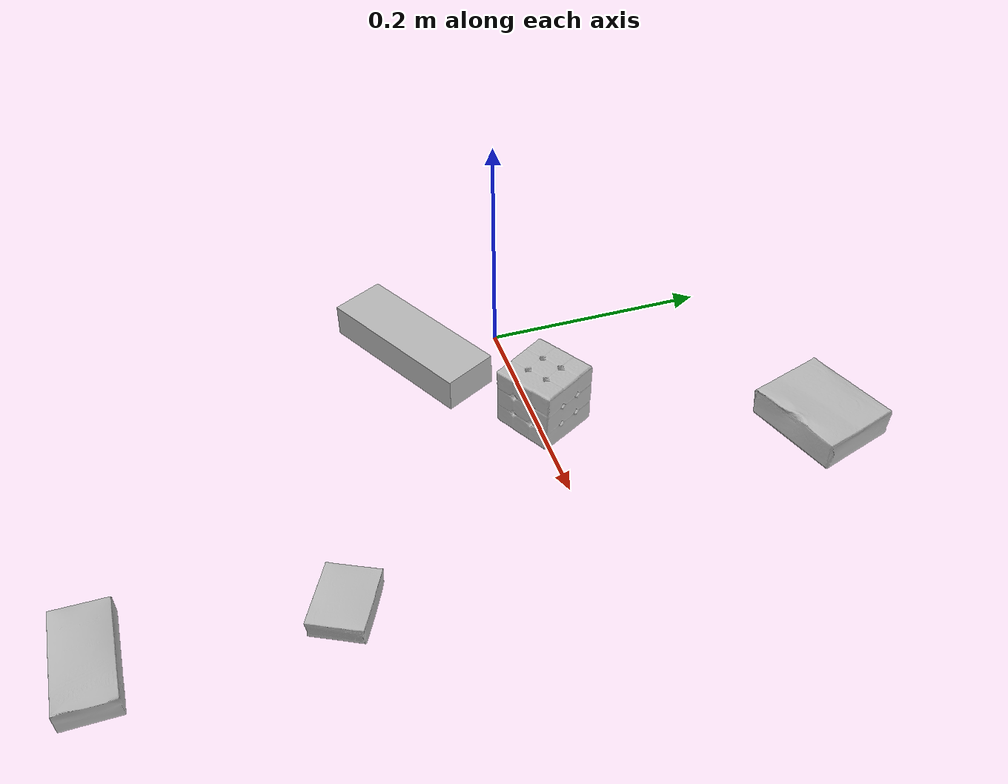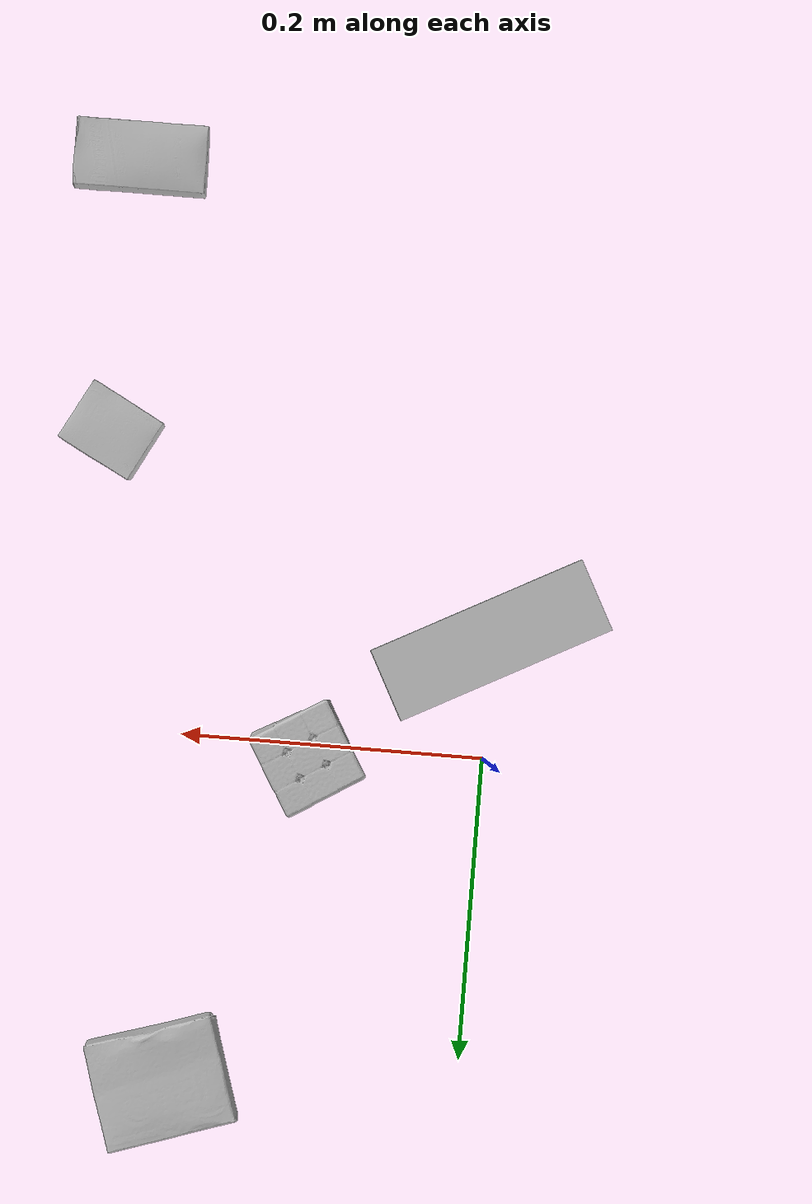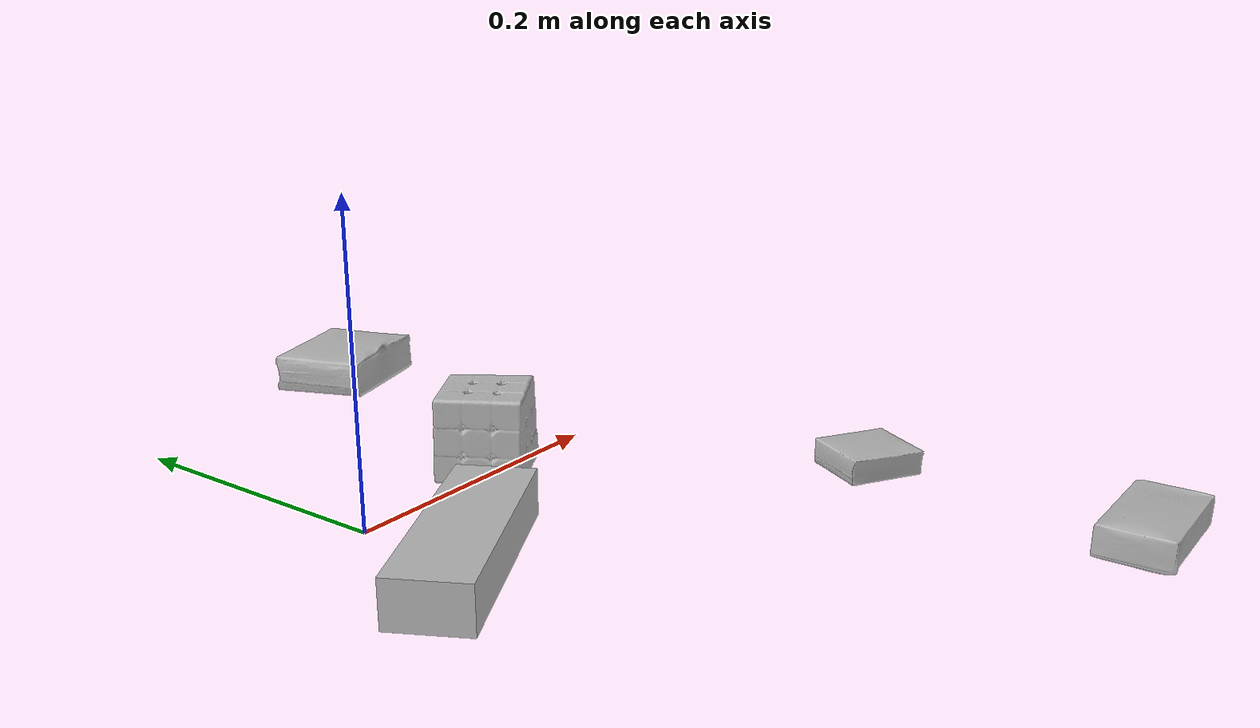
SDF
<sdf version="1.4">
  <world name="default">
    <light name="light1" type="point">
      <pose>0 0 1 0 0 0</pose>
      <diffuse>3 3 3 1</diffuse>
      <specular>3 3 3 1</specular>
    </light>
    <light name="light2" type="point">
      <pose>0 0.5 2 0 0 0</pose>
      <diffuse>1 1 1 1</diffuse>
      <specular>1 1 1 1</specular>
    </light>
    <light name="light3" type="point">
      <pose>0 0.5 2 0 0 0</pose>
      <diffuse>3 3 3 1</diffuse>
      <specular>3 3 3 1</specular>
    </light>
    <scene>
      <ambient>0.7 0.7 0.7</ambient>
    </scene>
    <model name="box1">
      <link name="link_box1">
        <collision name="default">
          <geometry>
            <mesh>
              <uri>model://sugar_box/collision_meshes/collision.obj</uri>
              <scale>0.5 0.5 0.5</scale>
            </mesh>
          </geometry>
          <surface>
            <friction>
              <ode>
                <mu>0.5</mu>
                <mu2>0.5</mu2>
              </ode>
            </friction>
          <contact>
        <ode>
            <max_vel>0</max_vel>
            <min_depth>0.0001</min_depth>
            <kp>1e8</kp>
        </ode>
    </contact></surface>
        </collision>
        <visual name="default">
          <geometry>
            <mesh>
              <uri>model://sugar_box/visual_meshes/visual.dae</uri>
              <scale>0.5 0.5 0.5</scale>
            </mesh>
          </geometry>
        </visual>
        <inertial>
          <mass>0.06211651861667633</mass>
          <pose>0.0005171863595023751 1.9245546354795806e-05 -0.00018182402709499002 -0.00040462630054681676 0.0010506634057476226 0.0026153787889456807</pose>
          <inertia>
            <ixx>1.2938825e-05</ixx>
            <iyy>4.1820942e-05</iyy>
            <izz>5.0064667e-05</izz>
            <ixy>0</ixy>
            <ixz>0</ixz>
            <iyz>0</iyz>
          </inertia>
        </inertial>
      </link>
      <pose>0.2561412453651428 -0.3767564296722412 0.01139930821955204 0.0007746524646329672 -0.02343308582462513 3.1362673338523037</pose>
    </model>
    <model name="box2">
      <link name="link_box2">
        <collision name="default">
          <geometry>
            <mesh>
              <uri>model://rubiks_cube/collision_meshes/collision.obj</uri>
              <scale>1.0 1.0 1.0</scale>
            </mesh>
          </geometry>
          <surface>
            <friction>
              <ode>
                <mu>0.5</mu>
                <mu2>0.5</mu2>
              </ode>
            </friction>
          <contact>
        <ode>
            <max_vel>0</max_vel>
            <min_depth>0.0001</min_depth>
            <kp>1e8</kp>
        </ode>
    </contact></surface>
        </collision>
        <visual name="default">
          <geometry>
            <mesh>
              <uri>model://rubiks_cube/visual_meshes/visual.dae</uri>
              <scale>1.0 1.0 1.0</scale>
            </mesh>
          </geometry>
        </visual>
        <inertial>
          <mass>0.2700360119342804</mass>
          <pose>2.6721041649580002e-05 5.256967051536776e-05 -7.264316536748083e-06 -0.05467324422766238 -0.0981422115654675 -0.034454566623261795</pose>
          <inertia>
            <ixx>0.00014921304</ixx>
            <iyy>0.00014851718</iyy>
            <izz>0.00015044949</izz>
            <ixy>0</ixy>
            <ixz>0</ixz>
            <iyz>0</iyz>
          </inertia>
        </inertial>
      </link>
      <pose>0.11523652821779251 0.007205294445157051 0.028678977862000465 -3.196419721317132e-06 -1.2402028315613556e-06 -2.6008272018595275</pose>
    </model>
    <model name="box3">
      <link name="link_box3">
        <collision name="default">
          <geometry>
            <mesh>
              <uri>model://jenga/collision_meshes/collision.obj</uri>
              <scale>1.0 1.0 1.0</scale>
            </mesh>
          </geometry>
          <surface>
            <friction>
              <ode>
                <mu>0.5</mu>
                <mu2>0.5</mu2>
              </ode>
            </friction>
          <contact>
        <ode>
            <max_vel>0</max_vel>
            <min_depth>0.0001</min_depth>
            <kp>1e8</kp>
        </ode>
    </contact></surface>
        </collision>
        <visual name="default">
          <geometry>
            <mesh>
              <uri>model://jenga/visual_meshes/visual.dae</uri>
              <scale>1.0 1.0 1.0</scale>
            </mesh>
          </geometry>
        </visual>
        <inertial>
          <mass>0.12586519122123718</mass>
          <pose>-2.502855807051674e-07 -0.00010250010382151231 -4.0923401684267446e-05 0.0 -7.342154049184251e-07 0.0</pose>
          <inertia>
            <ixx>3.482995e-05</ixx>
            <iyy>0.0002360068</iyy>
            <izz>0.00025195733</izz>
            <ixy>0</ixy>
            <ixz>0</ixz>
            <iyz>0</iyz>
          </inertia>
        </inertial>
      </link>
      <pose>0.0018631593557074666 -0.0782712996006012 0.014999999664723873 2.1516702589479667e-08 -2.5233331023010284e-10 0.4868709967745024</pose>
    </model>
    <model name="box4">
      <link name="link_box4">
        <collision name="default">
          <geometry>
            <mesh>
              <uri>model://gelatin_box/collision_meshes/collision.obj</uri>
              <scale>1.0 1.0 1.0</scale>
            </mesh>
          </geometry>
          <surface>
            <friction>
              <ode>
                <mu>0.5</mu>
                <mu2>0.5</mu2>
              </ode>
            </friction>
          <contact>
        <ode>
            <max_vel>0</max_vel>
            <min_depth>0.0001</min_depth>
            <kp>1e8</kp>
        </ode>
    </contact></surface>
        </collision>
        <visual name="default">
          <geometry>
            <mesh>
              <uri>model://gelatin_box/visual_meshes/visual.dae</uri>
              <scale>1.0 1.0 1.0</scale>
            </mesh>
          </geometry>
        </visual>
        <inertial>
          <mass>0.0925464928150177</mass>
          <pose>0.0004319618456065655 0.00011156871914863586 -0.0003640321083366871 -0.0010503719798216618 -0.004755819622564704 0.01644055760929568</pose>
          <inertia>
            <ixx>6.533027e-05</ixx>
            <iyy>4.6665074e-05</iyy>
            <izz>9.9447236e-05</izz>
            <ixy>0</ixy>
            <ixz>0</ixz>
            <iyz>0</iyz>
          </inertia>
        </inertial>
      </link>
      <pose>0.19396385550498962 0.2282249629497528 0.01516831386834383 0.005596862263439414 -0.00730390440548698 -1.2658232944232386</pose>
    </model>
    <model name="box5">
      <link name="link_box5">
        <collision name="default">
          <geometry>
            <mesh>
              <uri>model://pudding_box/collision_meshes/collision.obj</uri>
              <scale>0.5 0.5 0.5</scale>
            </mesh>
          </geometry>
          <surface>
            <friction>
              <ode>
                <mu>0.5</mu>
                <mu2>0.5</mu2>
              </ode>
            </friction>
          <contact>
        <ode>
            <max_vel>0</max_vel>
            <min_depth>0.0001</min_depth>
            <kp>1e8</kp>
        </ode>
    </contact></surface>
        </collision>
        <visual name="default">
          <geometry>
            <mesh>
              <uri>model://pudding_box/visual_meshes/visual.dae</uri>
              <scale>0.5 0.5 0.5</scale>
            </mesh>
          </geometry>
        </visual>
        <inertial>
          <mass>0.0266704261302948</mass>
          <pose>0.00024474109522998333 0.00040339428232982755 -0.0002594413817860186 0.005213101812636465 -0.006603797316727521 0.020079823300208206</pose>
          <inertia>
            <ixx>7.5373864e-06</ixx>
            <iyy>5.0712065e-06</iyy>
            <izz>1.113092e-05</izz>
            <ixy>0</ixy>
            <ixz>0</ixz>
            <iyz>0</iyz>
          </inertia>
        </inertial>
      </link>
      <pose>0.26118746399879456 -0.19585388898849487 0.009862903505563736 0.022348089961679588 -0.011392039291149946 1.0820303256992312</pose>
    </model>
  <physics type="ode">
      <max_contacts>50</max_contacts>
      <ode>
        <solver>
          <type>quick</type>
          <iters>75</iters>
        </solver>
        <constraints>
          <contact_max_correcting_vel>0</contact_max_correcting_vel>
          <contact_surface_layer>0</contact_surface_layer>
        </constraints>
      </ode>
    </physics></world>
</sdf>
